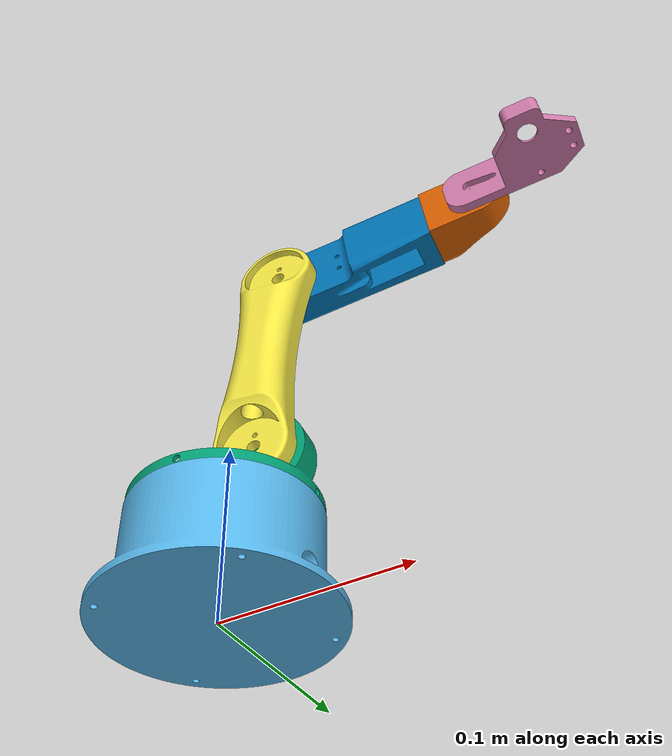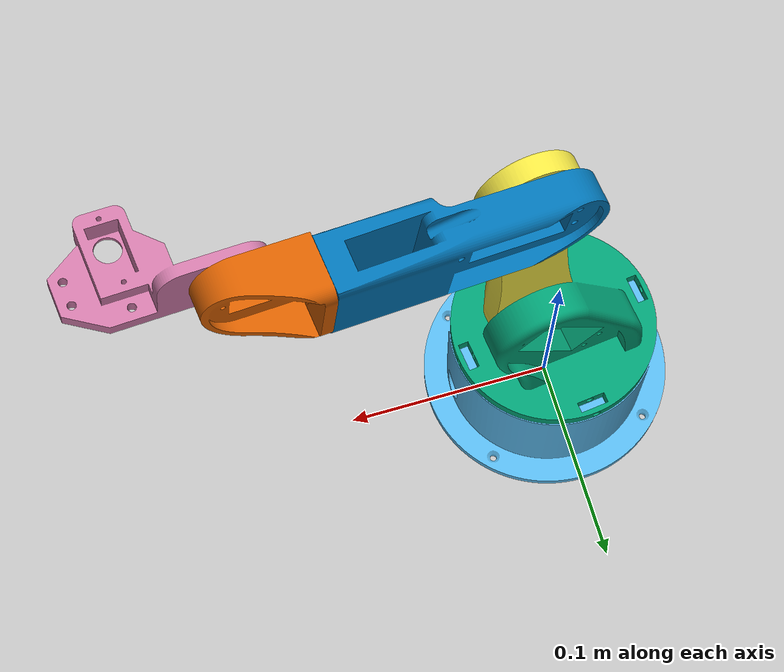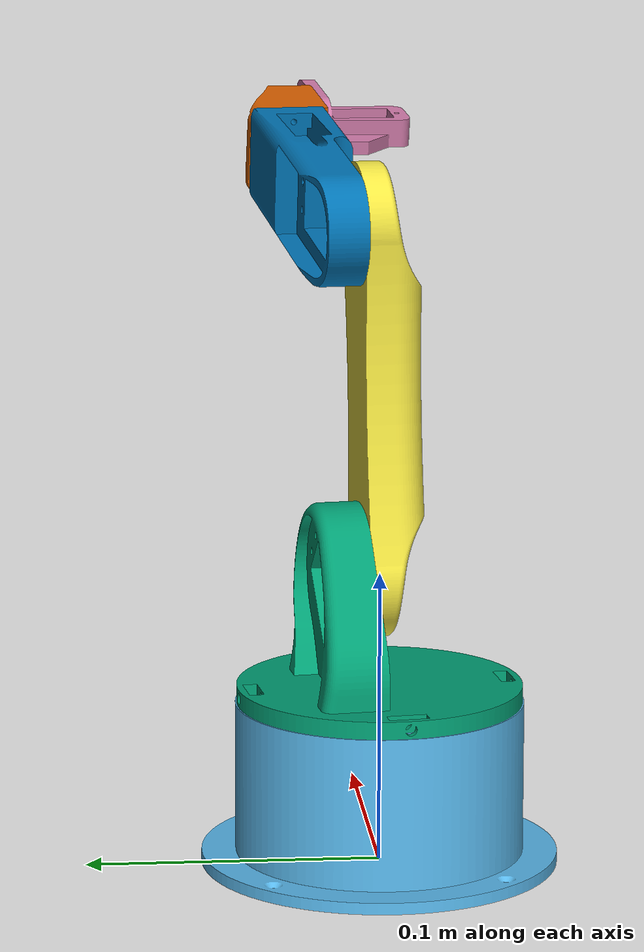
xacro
<?xml version="1.0"?>
<robot xmlns:xacro="http://www.ros.org/wiki/xacro" name="Full">
    <xacro:arg name="initial_positions_file" default="initial_positions.yaml" />

    <!-- Import Full urdf file -->
    <xacro:include filename="$(find my_robot_description)/urdf/rms_arm.urdf" />

    <!-- Import control_xacro -->
    <xacro:include filename="Full.ros2_control.xacro" />

    <xacro:Full_ros2_control name="FakeSystem" initial_positions_file="$(arg initial_positions_file)"/>

</robot>

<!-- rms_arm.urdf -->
<robot name="Full">

    <!--
    1) Add a "world" link for a global reference frame
    2) Attach your existing base ("Base-v1") to it with one fixed joint
    -->
    <link name="world"/>

    <joint name="world_joint" type="fixed">
        <parent link="world"/>
        <child link="Base-v1"/>
        <origin xyz="0 0 0" rpy="1.57 0 0"/>
    </joint>

    <!-- =========================
         Your ORIGINAL Code Below
         (Unchanged)
    ========================= -->

    <link name="Base-v1">
        <inertial>
            <origin xyz="0 0 0" rpy="0.0 1.57 0.0" />
            <mass value="1.5841960851584953" />
            <inertia ixx="0.0019343925509478547" iyy="0.002922564697452351" izz="0.0019280909894288623" ixy="-1.4029039136296486e-06" iyz="2.7242454120453767e-17" ixz="-3.2677516034636543e-18" />
        </inertial>
        <visual name="Base-v1_visual">
            <origin xyz="0.0 0.0 0.0" rpy="0.0 0.0 0.0" />
            <geometry>
                <mesh filename="package://my_robot_description/meshes/Base-v1.stl" scale="0.001 0.001 0.001" />
            </geometry>
        </visual>
        <collision name="Base-v1_collision">
            <origin xyz="0.0 0.0 0.0" rpy="0.0 0.0 0.0" />
            <geometry>
                <mesh filename="package://my_robot_description/meshes/Base-v1.stl" scale="0.001 0.001 0.001" />
            </geometry>
        </collision>
    </link>

    <link name="Waist-v1">
        <inertial>
            <origin xyz="0.0012671681495757638 0.005720672514226869 0.01632898614142321" rpy="0.0 -0.0 0.0" />
            <mass value="0.6272819365021121" />
            <inertia ixx="0.0004377588788490507" iyy="0.0005327919075018514" izz="0.0005395501272474572" ixy="-1.7339262852157017e-05" iyz="-5.605813743030287e-05" ixz="-4.759883007256091e-05" />
        </inertial>
        <visual name="Waist-v1_visual">
            <origin xyz="0.0 0.0 0.0" rpy="1.5707963267948968 -7.203005260804219e-18 -1.4528893219072108" />
            <geometry>
                <mesh filename="package://my_robot_description/meshes/Waist-v1.stl" scale="0.001 0.001 0.001" />
            </geometry>
        </visual>
        <collision name="Waist-v1_collision">
            <origin xyz="0.0 0.0 0.0" rpy="1.5707963267948968 -7.203005260804219e-18 -1.4528893219072108" />
            <geometry>
                <mesh filename="package://my_robot_description/meshes/Waist-v1.stl" scale="0.001 0.001 0.001" />
            </geometry>
        </collision>
    </link>

    <link name="Arm-01-v1">
        <inertial>
            <origin xyz="0.007174161454748397 -0.05982184214783512 0.005504623173362247" rpy="0.0 -0.0 1.3684555315672045e-48" />
            <mass value="0.5029413662942186" />
            <inertia ixx="0.0008522938497419646" iyy="7.686209564411288e-05" izz="0.0008108304972406861" ixy="-6.706821171419653e-06" iyz="5.662120103047088e-05" ixz="4.9817861280901726e-06" />
        </inertial>
        <visual name="Arm-01-v1_visual">
            <origin xyz="0.02085419969719422 -1.759331169637335e-10 0.002470318416282509" rpy="2.5649350238110364 1.4300054615061795 -0.5812116897024879" />
            <geometry>
                <mesh filename="package://my_robot_description/meshes/Arm-01-v1.stl" scale="0.001 0.001 0.001" />
            </geometry>
        </visual>
        <collision name="Arm-01-v1_collision">
            <origin xyz="0.02085419969719422 -1.759331169637335e-10 0.002470318416282509" rpy="2.5649350238110364 1.4300054615061795 -0.5812116897024879" />
            <geometry>
                <mesh filename="package://my_robot_description/meshes/Arm-01-v1.stl" scale="0.001 0.001 0.001" />
            </geometry>
        </collision>
    </link>

    <link name="Arm-02-v1">
        <inertial>
            <origin xyz="0.04033452449803634 -0.005887075033096139 0.010537757709928177" rpy="0.0 -0.0 1.3781443036412878e-51" />
            <mass value="0.36971477325871516" />
            <inertia ixx="7.939089821021664e-05" iyy="0.00039673314565697674" izz="0.00042494093163040017" ixy="4.681551753867899e-05" iyz="5.0953767501994975e-06" ixz="-3.829122998024289e-05" />
        </inertial>
        <visual name="Arm-02-v1_visual">
            <origin xyz="0.034166955741842905 -0.004878619609602488 0.0040472972561662116" rpy="0.01662879336355181 -0.11673389487020806 -0.1418289303686558" />
            <geometry>
                <mesh filename="package://my_robot_description/meshes/Arm-02-v1.stl" scale="0.001 0.001 0.001" />
            </geometry>
        </visual>
        <collision name="Arm-02-v1_collision">
            <origin xyz="0.034166955741842905 -0.004878619609602488 0.0040472972561662116" rpy="0.01662879336355181 -0.11673389487020806 -0.1418289303686558" />
            <geometry>
                <mesh filename="package://my_robot_description/meshes/Arm-02-v1.stl" scale="0.001 0.001 0.001" />
            </geometry>
        </collision>
    </link>

    <link name="Arm-03-v1">
        <inertial>
            <origin xyz="0.003328612803981841 -0.007404315259190107 0.017448896435718737" rpy="-2.465190328815662e-32 -0.0 0.0" />
            <mass value="0.12929221233201882" />
            <inertia ixx="4.0094875349528186e-05" iyy="3.0462929850060008e-05" izz="1.9847803382298114e-05" ixy="6.030740574837314e-07" iyz="1.3258067531208419e-06" ixz="-2.1613852940017644e-06" />
        </inertial>
        <visual name="Arm-03-v1_visual">
            <origin xyz="0.0001690876726700985 -0.004949724022803252 -0.0006867318389041622" rpy="1.6922892426684695 0.13778155669737305 -1.5366481469545703" />
            <geometry>
                <mesh filename="package://my_robot_description/meshes/Arm-03-v1.stl" scale="0.001 0.001 0.001" />
            </geometry>
        </visual>
        <collision name="Arm-03-v1_collision">
            <origin xyz="0.0001690876726700985 -0.004949724022803252 -0.0006867318389041622" rpy="1.6922892426684695 0.13778155669737305 -1.5366481469545703" />
            <geometry>
                <mesh filename="package://my_robot_description/meshes/Arm-03-v1.stl" scale="0.001 0.001 0.001" />
            </geometry>
        </collision>
    </link>

    <link name="Gripper-base-v1">
        <inertial>
            <origin xyz="0.0292647906259794 -0.002631942888767611 0.010253676982615754" rpy="0.0 -0.0 0.0" />
            <mass value="0.10945811404763497" />
            <inertia ixx="1.94992583529615e-05" iyy="5.966723053334393e-05" izz="4.8834325374494045e-05" ixy="3.877433040869009e-06" iyz="2.0979126872018253e-06" ixz="-1.1952067406254616e-05" />
        </inertial>
        <visual name="Gripper-base-v1_visual">
            <origin xyz="0.06317908557859961 -6.481971089158378e-05 -0.0076419014602130565" rpy="-2.8590026992489808 -1.4492177082657172 -0.14275123841046303" />
            <geometry>
                <mesh filename="package://my_robot_description/meshes/Gripper-base-v1.stl" scale="0.001 0.001 0.001" />
            </geometry>
        </visual>
        <collision name="Gripper-base-v1_collision">
            <origin xyz="0.06317908557859961 -6.481971089158378e-05 -0.0076419014602130565" rpy="-2.8590026992489808 -1.4492177082657172 -0.14275123841046303" />
            <geometry>
                <mesh filename="package://my_robot_description/meshes/Gripper-base-v1.stl" scale="0.001 0.001 0.001" />
            </geometry>
        </collision>
    </link>

    <joint name="Base-v1_Revolute-1" type="continuous">
        <origin xyz="0.0 0.055999999999999994 0.0" rpy="-1.5707963267948966 -0.0 0.0" />
        <parent link="Base-v1" />
        <child link="Waist-v1" />
        <axis xyz="0.0 0.0 1.0" />
    </joint>
    <joint name="Waist-v1_Revolute-3" type="continuous">
        <origin xyz="0.01335133 0.00560952 0.04027648000000001" rpy="-1.5707963267948966 1.2325951644078312e-32 -1.5707963267948966" />
        <parent link="Waist-v1" />
        <child link="Arm-01-v1" />
        <axis xyz="0.9930569999999999 0.0 0.11763399999999999" />
    </joint>
    <joint name="Arm-01-v1_Revolute-4" type="continuous">
        <origin xyz="-0.0010875599999999996 -0.11964332 0.00918113" rpy="-1.232595164407831e-32 -1.5707963267948966 0" />
        <parent link="Arm-01-v1" />
        <child link="Arm-02-v1" />
        <axis xyz="0.11763399999999999 -8.672654608354869e-19 -0.9930570000000002" />
    </joint>
    <joint name="Arm-02-v1_Revolute-6" type="continuous">
        <origin xyz="0.08833608000000003 -0.007352670000000039 0.016002429999999998" rpy="1.3424705426259952e-16 1.5707963267948966 0" />
        <parent link="Arm-02-v1" />
        <child link="Arm-03-v1" />
        <axis xyz="-0.11646900000000003 -0.14039199999999985 0.9832220000000003" />
    </joint>
    <joint name="Arm-03-v1_Revolute-7" type="continuous">
        <origin xyz="0.01080461 -0.008639139999999976 0.028524119999999976" rpy="-3.141592653589793 -1.5707963267948966 0" />
        <parent link="Arm-03-v1" />
        <child link="Gripper-base-v1" />
        <axis xyz="-0.120046 0.017253999999999995 -0.992618" />
    </joint>

</robot>
